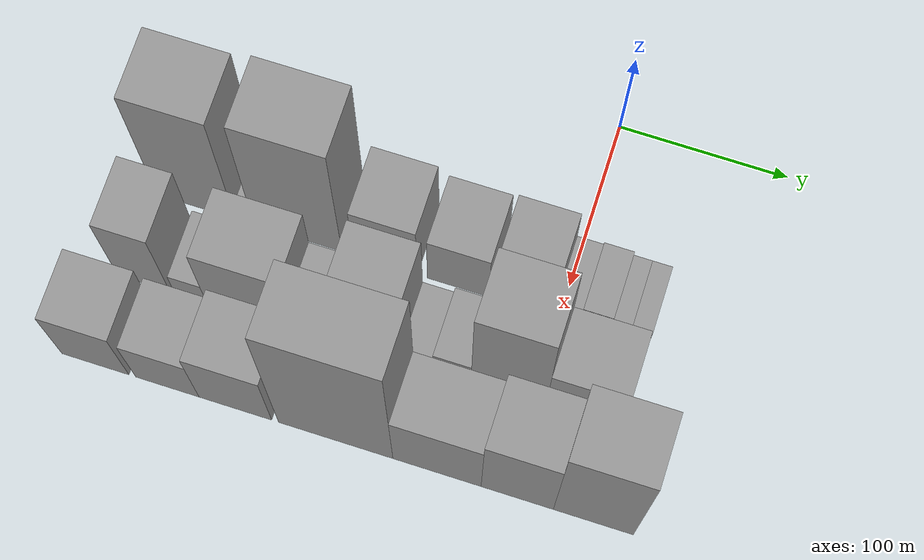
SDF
<sdf version="1.6">
 <world name="default">
  <model name="building_10">
   <static>1</static>
   <pose>100.0000 -216.1852 0 0.000000 0.000000 0.000000</pose>
   <link name="link">
    <pose>0 0 75.00 0 0 0</pose>
    <collision name="collision"><geometry><box><size>40.0000 47.3368 150.0000</size></box></geometry></collision>
    <visual name="visual">
     <cast_shadows>0</cast_shadows>
     <geometry><box><size>40.0000 47.3368 150.0000</size></box></geometry>
     <material>
      <script>
       <uri>model://grey_wall/materials/scripts</uri>
       <uri>model://grey_wall/materials/textures</uri>
       <name>vrc/grey_wall</name>
      </script>
     </material>
    </visual>
   </link>
  </model>
  <model name="building_11">
   <static>1</static>
   <pose>100.0000 -188.3628 0 0.000000 0.000000 0.000000</pose>
   <link name="link">
    <pose>0 0 9.00 0 0 0</pose>
    <collision name="collision"><geometry><box><size>40.0000 8.3081 18.0000</size></box></geometry></collision>
    <visual name="visual">
     <cast_shadows>0</cast_shadows>
     <geometry><box><size>40.0000 8.3081 18.0000</size></box></geometry>
     <material>
      <script>
       <uri>model://grey_wall/materials/scripts</uri>
       <uri>model://grey_wall/materials/textures</uri>
       <name>vrc/grey_wall</name>
      </script>
     </material>
    </visual>
   </link>
  </model>
  <model name="building_12">
   <static>1</static>
   <pose>100.0000 -154.8625 0 0.000000 0.000000 0.000000</pose>
   <link name="link">
    <pose>0 0 78.00 0 0 0</pose>
    <collision name="collision"><geometry><box><size>40.0000 52.6923 156.0000</size></box></geometry></collision>
    <visual name="visual">
     <cast_shadows>0</cast_shadows>
     <geometry><box><size>40.0000 52.6923 156.0000</size></box></geometry>
     <material>
      <script>
       <uri>model://grey_wall/materials/scripts</uri>
       <uri>model://grey_wall/materials/textures</uri>
       <name>vrc/grey_wall</name>
      </script>
     </material>
    </visual>
   </link>
  </model>
  <model name="building_13">
   <static>1</static>
   <pose>100.0000 -102.5972 0 0.000000 0.000000 0.000000</pose>
   <link name="link">
    <pose>0 0 37.50 0 0 0</pose>
    <collision name="collision"><geometry><box><size>40.0000 37.8382 75.0000</size></box></geometry></collision>
    <visual name="visual">
     <cast_shadows>0</cast_shadows>
     <geometry><box><size>40.0000 37.8382 75.0000</size></box></geometry>
     <material>
      <script>
       <uri>model://grey_wall/materials/scripts</uri>
       <uri>model://grey_wall/materials/textures</uri>
       <name>vrc/grey_wall</name>
      </script>
     </material>
    </visual>
   </link>
  </model>
  <model name="building_14">
   <static>1</static>
   <pose>100.0000 -59.6214 0 0.000000 0.000000 0.000000</pose>
   <link name="link">
    <pose>0 0 33.00 0 0 0</pose>
    <collision name="collision"><geometry><box><size>40.0000 36.1136 66.0000</size></box></geometry></collision>
    <visual name="visual">
     <cast_shadows>0</cast_shadows>
     <geometry><box><size>40.0000 36.1136 66.0000</size></box></geometry>
     <material>
      <script>
       <uri>model://grey_wall/materials/scripts</uri>
       <uri>model://grey_wall/materials/textures</uri>
       <name>vrc/grey_wall</name>
      </script>
     </material>
    </visual>
   </link>
  </model>
  <model name="building_15">
   <static>1</static>
   <pose>100.0000 -21.0371 0 0.000000 0.000000 0.000000</pose>
   <link name="link">
    <pose>0 0 34.50 0 0 0</pose>
    <collision name="collision"><geometry><box><size>40.0000 35.0550 69.0000</size></box></geometry></collision>
    <visual name="visual">
     <cast_shadows>0</cast_shadows>
     <geometry><box><size>40.0000 35.0550 69.0000</size></box></geometry>
     <material>
      <script>
       <uri>model://grey_wall/materials/scripts</uri>
       <uri>model://grey_wall/materials/textures</uri>
       <name>vrc/grey_wall</name>
      </script>
     </material>
    </visual>
   </link>
  </model>
  <model name="building_16">
   <static>1</static>
   <pose>100.0000 4.1578 0 0.000000 0.000000 0.000000</pose>
   <link name="link">
    <pose>0 0 15.00 0 0 0</pose>
    <collision name="collision"><geometry><box><size>40.0000 15.3347 30.0000</size></box></geometry></collision>
    <visual name="visual">
     <cast_shadows>0</cast_shadows>
     <geometry><box><size>40.0000 15.3347 30.0000</size></box></geometry>
     <material>
      <script>
       <uri>model://grey_wall/materials/scripts</uri>
       <uri>model://grey_wall/materials/textures</uri>
       <name>vrc/grey_wall</name>
      </script>
     </material>
    </visual>
   </link>
  </model>
  <model name="building_17">
   <static>1</static>
   <pose>100.0000 20.5134 0 0.000000 0.000000 0.000000</pose>
   <link name="link">
    <pose>0 0 16.50 0 0 0</pose>
    <collision name="collision"><geometry><box><size>40.0000 17.3766 33.0000</size></box></geometry></collision>
    <visual name="visual">
     <cast_shadows>0</cast_shadows>
     <geometry><box><size>40.0000 17.3766 33.0000</size></box></geometry>
     <material>
      <script>
       <uri>model://grey_wall/materials/scripts</uri>
       <uri>model://grey_wall/materials/textures</uri>
       <name>vrc/grey_wall</name>
      </script>
     </material>
    </visual>
   </link>
  </model>
  <model name="building_18">
   <static>1</static>
   <pose>100.0000 34.6201 0 0.000000 0.000000 0.000000</pose>
   <link name="link">
    <pose>0 0 13.50 0 0 0</pose>
    <collision name="collision"><geometry><box><size>40.0000 10.8368 27.0000</size></box></geometry></collision>
    <visual name="visual">
     <cast_shadows>0</cast_shadows>
     <geometry><box><size>40.0000 10.8368 27.0000</size></box></geometry>
     <material>
      <script>
       <uri>model://grey_wall/materials/scripts</uri>
       <uri>model://grey_wall/materials/textures</uri>
       <name>vrc/grey_wall</name>
      </script>
     </material>
    </visual>
   </link>
  </model>
  <model name="building_19">
   <static>1</static>
   <pose>100.0000 45.8393 0 0.000000 0.000000 0.000000</pose>
   <link name="link">
    <pose>0 0 13.50 0 0 0</pose>
    <collision name="collision"><geometry><box><size>40.0000 11.6015 27.0000</size></box></geometry></collision>
    <visual name="visual">
     <cast_shadows>0</cast_shadows>
     <geometry><box><size>40.0000 11.6015 27.0000</size></box></geometry>
     <material>
      <script>
       <uri>model://grey_wall/materials/scripts</uri>
       <uri>model://grey_wall/materials/textures</uri>
       <name>vrc/grey_wall</name>
      </script>
     </material>
    </visual>
   </link>
  </model>
  <model name="building_48">
   <static>1</static>
   <pose>152.0000 -228.5603 0 0.000000 0.000000 0.000000</pose>
   <link name="link">
    <pose>0 0 46.50 0 0 0</pose>
    <collision name="collision"><geometry><box><size>40.0000 31.0802 93.0000</size></box></geometry></collision>
    <visual name="visual">
     <cast_shadows>0</cast_shadows>
     <geometry><box><size>40.0000 31.0802 93.0000</size></box></geometry>
     <material>
      <script>
       <uri>model://grey_wall/materials/scripts</uri>
       <uri>model://grey_wall/materials/textures</uri>
       <name>vrc/grey_wall</name>
      </script>
     </material>
    </visual>
   </link>
  </model>
  <model name="building_49">
   <static>1</static>
   <pose>152.0000 -200.5107 0 0.000000 0.000000 0.000000</pose>
   <link name="link">
    <pose>0 0 16.50 0 0 0</pose>
    <collision name="collision"><geometry><box><size>40.0000 19.0191 33.0000</size></box></geometry></collision>
    <visual name="visual">
     <cast_shadows>0</cast_shadows>
     <geometry><box><size>40.0000 19.0191 33.0000</size></box></geometry>
     <material>
      <script>
       <uri>model://grey_wall/materials/scripts</uri>
       <uri>model://grey_wall/materials/textures</uri>
       <name>vrc/grey_wall</name>
      </script>
     </material>
    </visual>
   </link>
  </model>
  <model name="building_50">
   <static>1</static>
   <pose>152.0000 -166.1825 0 0.000000 0.000000 0.000000</pose>
   <link name="link">
    <pose>0 0 45.00 0 0 0</pose>
    <collision name="collision"><geometry><box><size>40.0000 49.6372 90.0000</size></box></geometry></collision>
    <visual name="visual">
     <cast_shadows>0</cast_shadows>
     <geometry><box><size>40.0000 49.6372 90.0000</size></box></geometry>
     <material>
      <script>
       <uri>model://grey_wall/materials/scripts</uri>
       <uri>model://grey_wall/materials/textures</uri>
       <name>vrc/grey_wall</name>
      </script>
     </material>
    </visual>
   </link>
  </model>
  <model name="building_51">
   <static>1</static>
   <pose>152.0000 -128.8880 0 0.000000 0.000000 0.000000</pose>
   <link name="link">
    <pose>0 0 21.00 0 0 0</pose>
    <collision name="collision"><geometry><box><size>40.0000 24.9519 42.0000</size></box></geometry></collision>
    <visual name="visual">
     <cast_shadows>0</cast_shadows>
     <geometry><box><size>40.0000 24.9519 42.0000</size></box></geometry>
     <material>
      <script>
       <uri>model://grey_wall/materials/scripts</uri>
       <uri>model://grey_wall/materials/textures</uri>
       <name>vrc/grey_wall</name>
      </script>
     </material>
    </visual>
   </link>
  </model>
  <model name="building_52">
   <static>1</static>
   <pose>152.0000 -96.3325 0 0.000000 0.000000 0.000000</pose>
   <link name="link">
    <pose>0 0 52.50 0 0 0</pose>
    <collision name="collision"><geometry><box><size>40.0000 40.1591 105.0000</size></box></geometry></collision>
    <visual name="visual">
     <cast_shadows>0</cast_shadows>
     <geometry><box><size>40.0000 40.1591 105.0000</size></box></geometry>
     <material>
      <script>
       <uri>model://grey_wall/materials/scripts</uri>
       <uri>model://grey_wall/materials/textures</uri>
       <name>vrc/grey_wall</name>
      </script>
     </material>
    </visual>
   </link>
  </model>
  <model name="building_53">
   <static>1</static>
   <pose>152.0000 -66.8950 0 0.000000 0.000000 0.000000</pose>
   <link name="link">
    <pose>0 0 16.50 0 0 0</pose>
    <collision name="collision"><geometry><box><size>40.0000 18.7159 33.0000</size></box></geometry></collision>
    <visual name="visual">
     <cast_shadows>0</cast_shadows>
     <geometry><box><size>40.0000 18.7159 33.0000</size></box></geometry>
     <material>
      <script>
       <uri>model://grey_wall/materials/scripts</uri>
       <uri>model://grey_wall/materials/textures</uri>
       <name>vrc/grey_wall</name>
      </script>
     </material>
    </visual>
   </link>
  </model>
  <model name="building_54">
   <static>1</static>
   <pose>152.0000 -46.5551 0 0.000000 0.000000 0.000000</pose>
   <link name="link">
    <pose>0 0 21.00 0 0 0</pose>
    <collision name="collision"><geometry><box><size>40.0000 21.9638 42.0000</size></box></geometry></collision>
    <visual name="visual">
     <cast_shadows>0</cast_shadows>
     <geometry><box><size>40.0000 21.9638 42.0000</size></box></geometry>
     <material>
      <script>
       <uri>model://grey_wall/materials/scripts</uri>
       <uri>model://grey_wall/materials/textures</uri>
       <name>vrc/grey_wall</name>
      </script>
     </material>
    </visual>
   </link>
  </model>
  <model name="building_55">
   <static>1</static>
   <pose>152.0000 -14.0715 0 0.000000 0.000000 0.000000</pose>
   <link name="link">
    <pose>0 0 69.00 0 0 0</pose>
    <collision name="collision"><geometry><box><size>40.0000 43.0035 138.0000</size></box></geometry></collision>
    <visual name="visual">
     <cast_shadows>0</cast_shadows>
     <geometry><box><size>40.0000 43.0035 138.0000</size></box></geometry>
     <material>
      <script>
       <uri>model://grey_wall/materials/scripts</uri>
       <uri>model://grey_wall/materials/textures</uri>
       <name>vrc/grey_wall</name>
      </script>
     </material>
    </visual>
   </link>
  </model>
  <model name="building_56">
   <static>1</static>
   <pose>152.0000 28.7573 0 0.000000 0.000000 0.000000</pose>
   <link name="link">
    <pose>0 0 37.50 0 0 0</pose>
    <collision name="collision"><geometry><box><size>40.0000 42.6541 75.0000</size></box></geometry></collision>
    <visual name="visual">
     <cast_shadows>0</cast_shadows>
     <geometry><box><size>40.0000 42.6541 75.0000</size></box></geometry>
     <material>
      <script>
       <uri>model://grey_wall/materials/scripts</uri>
       <uri>model://grey_wall/materials/textures</uri>
       <name>vrc/grey_wall</name>
      </script>
     </material>
    </visual>
   </link>
  </model>
  <model name="building_82">
   <static>1</static>
   <pose>204.0000 -238.1747 0 0.000000 0.000000 0.000000</pose>
   <link name="link">
    <pose>0 0 37.50 0 0 0</pose>
    <collision name="collision"><geometry><box><size>40.0000 39.7671 75.0000</size></box></geometry></collision>
    <visual name="visual">
     <cast_shadows>0</cast_shadows>
     <geometry><box><size>40.0000 39.7671 75.0000</size></box></geometry>
     <material>
      <script>
       <uri>model://grey_wall/materials/scripts</uri>
       <uri>model://grey_wall/materials/textures</uri>
       <name>vrc/grey_wall</name>
      </script>
     </material>
    </visual>
   </link>
  </model>
  <model name="building_83">
   <static>1</static>
   <pose>204.0000 -195.5956 0 0.000000 0.000000 0.000000</pose>
   <link name="link">
    <pose>0 0 33.00 0 0 0</pose>
    <collision name="collision"><geometry><box><size>40.0000 37.3911 66.0000</size></box></geometry></collision>
    <visual name="visual">
     <cast_shadows>0</cast_shadows>
     <geometry><box><size>40.0000 37.3911 66.0000</size></box></geometry>
     <material>
      <script>
       <uri>model://grey_wall/materials/scripts</uri>
       <uri>model://grey_wall/materials/textures</uri>
       <name>vrc/grey_wall</name>
      </script>
     </material>
    </visual>
   </link>
  </model>
  <model name="building_84">
   <static>1</static>
   <pose>204.0000 -155.6170 0 0.000000 0.000000 0.000000</pose>
   <link name="link">
    <pose>0 0 42.00 0 0 0</pose>
    <collision name="collision"><geometry><box><size>40.0000 42.5661 84.0000</size></box></geometry></collision>
    <visual name="visual">
     <cast_shadows>0</cast_shadows>
     <geometry><box><size>40.0000 42.5661 84.0000</size></box></geometry>
     <material>
      <script>
       <uri>model://grey_wall/materials/scripts</uri>
       <uri>model://grey_wall/materials/textures</uri>
       <name>vrc/grey_wall</name>
      </script>
     </material>
    </visual>
   </link>
  </model>
  <model name="building_85">
   <static>1</static>
   <pose>204.0000 -97.1246 0 0.000000 0.000000 0.000000</pose>
   <link name="link">
    <pose>0 0 93.00 0 0 0</pose>
    <collision name="collision"><geometry><box><size>40.0000 66.4187 186.0000</size></box></geometry></collision>
    <visual name="visual">
     <cast_shadows>0</cast_shadows>
     <geometry><box><size>40.0000 66.4187 186.0000</size></box></geometry>
     <material>
      <script>
       <uri>model://grey_wall/materials/scripts</uri>
       <uri>model://grey_wall/materials/textures</uri>
       <name>vrc/grey_wall</name>
      </script>
     </material>
    </visual>
   </link>
  </model>
  <model name="building_86">
   <static>1</static>
   <pose>204.0000 -38.5530 0 0.000000 0.000000 0.000000</pose>
   <link name="link">
    <pose>0 0 45.00 0 0 0</pose>
    <collision name="collision"><geometry><box><size>40.0000 50.7244 90.0000</size></box></geometry></collision>
    <visual name="visual">
     <cast_shadows>0</cast_shadows>
     <geometry><box><size>40.0000 50.7244 90.0000</size></box></geometry>
     <material>
      <script>
       <uri>model://grey_wall/materials/scripts</uri>
       <uri>model://grey_wall/materials/textures</uri>
       <name>vrc/grey_wall</name>
      </script>
     </material>
    </visual>
   </link>
  </model>
  <model name="building_87">
   <static>1</static>
   <pose>204.0000 7.4668 0 0.000000 0.000000 0.000000</pose>
   <link name="link">
    <pose>0 0 52.50 0 0 0</pose>
    <collision name="collision"><geometry><box><size>40.0000 41.3153 105.0000</size></box></geometry></collision>
    <visual name="visual">
     <cast_shadows>0</cast_shadows>
     <geometry><box><size>40.0000 41.3153 105.0000</size></box></geometry>
     <material>
      <script>
       <uri>model://grey_wall/materials/scripts</uri>
       <uri>model://grey_wall/materials/textures</uri>
       <name>vrc/grey_wall</name>
      </script>
     </material>
    </visual>
   </link>
  </model>
  <model name="building_88">
   <static>1</static>
   <pose>204.0000 50.8541 0 0.000000 0.000000 0.000000</pose>
   <link name="link">
    <pose>0 0 69.00 0 0 0</pose>
    <collision name="collision"><geometry><box><size>40.0000 45.4592 138.0000</size></box></geometry></collision>
    <visual name="visual">
     <cast_shadows>0</cast_shadows>
     <geometry><box><size>40.0000 45.4592 138.0000</size></box></geometry>
     <material>
      <script>
       <uri>model://grey_wall/materials/scripts</uri>
       <uri>model://grey_wall/materials/textures</uri>
       <name>vrc/grey_wall</name>
      </script>
     </material>
    </visual>
   </link>
  </model>
 </world>
</sdf>
